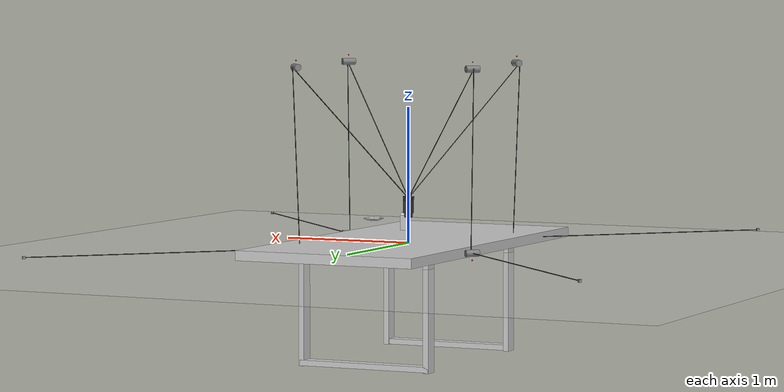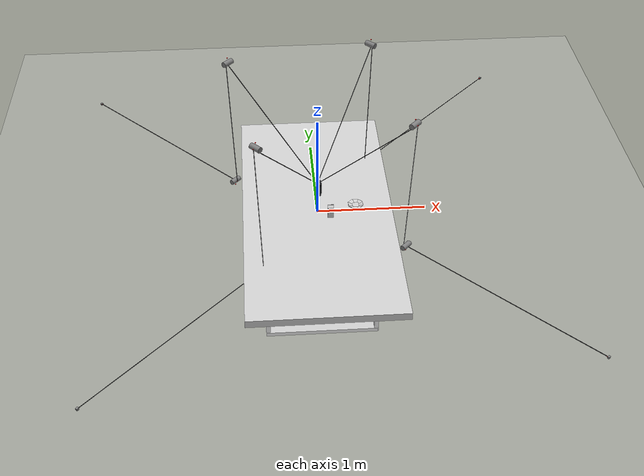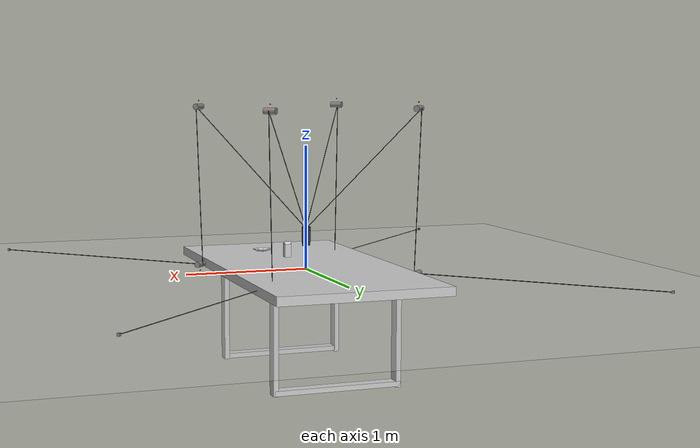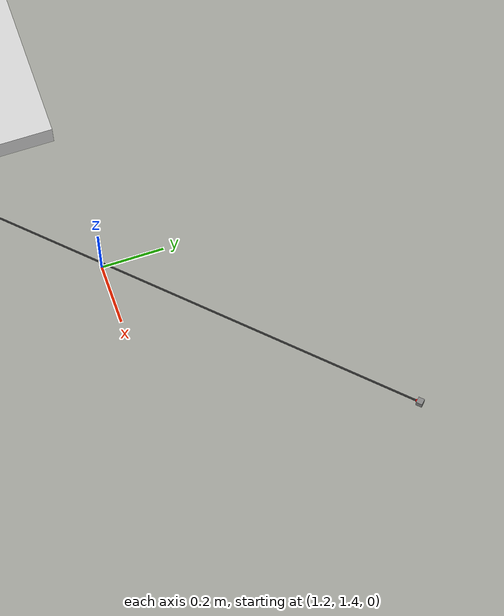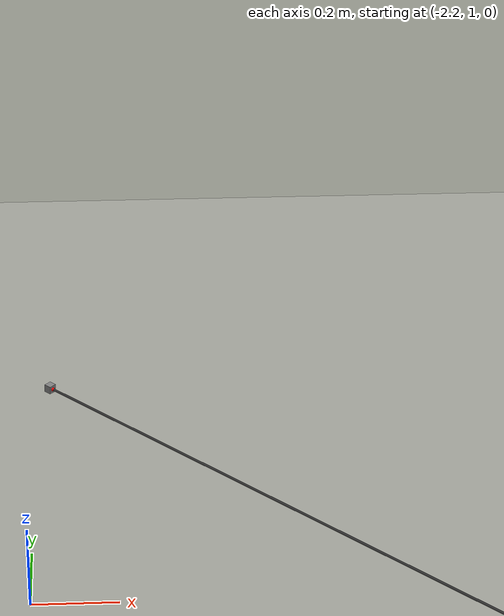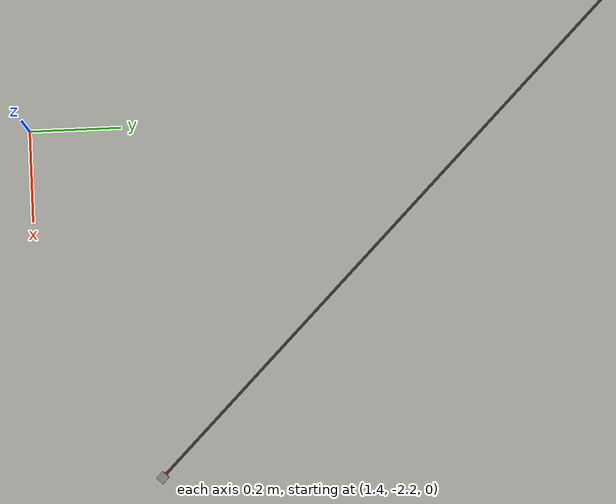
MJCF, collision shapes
<mujoco>
    <compiler autolimits="true"/>

    <!-- Set mesh/texture dirs for the SCENE only -->
    <compiler meshdir="/Users/damirnurtdinov/Desktop/My Courses/Диплом/CDPR-Dataset/cdpr_dataset/wrappers" texturedir="/Users/damirnurtdinov/Desktop/My Courses/Диплом/CDPR-Dataset/cdpr_dataset/wrappers"/>
    <include file="/Users/damirnurtdinov/Desktop/My Courses/Диплом/CDPR-Dataset/cdpr_dataset/wrappers/desk_zshift.xml"/>

    <!-- Reset to neutral (our CDPR uses primitives / absolute includes) -->
    <compiler meshdir="" texturedir=""/>

    <!-- CDPR rig -->
    <include file="/Users/damirnurtdinov/Desktop/My Courses/Диплом/CDPR-Dataset/cdpr_dataset/wrappers/cdpr_ee_override.xml"/>

    <!-- Placed LIBERO objects (assets already absolute) -->
    <include file="/Users/damirnurtdinov/Desktop/My Courses/Диплом/CDPR-Dataset/cdpr_dataset/wrappers/placed_0_milk.xml"/>
<include file="/Users/damirnurtdinov/Desktop/My Courses/Диплом/CDPR-Dataset/cdpr_dataset/wrappers/placed_1_plate.xml"/>
    </mujoco>

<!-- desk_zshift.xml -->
<mujoco model="desk">
  <asset>
    <texture file="/root/repo/LIBERO/libero/libero/assets/scenes/desk/desk_texture.png" name="tex-desk" type="2d" />
    <material name="desk" reflectance="0.5" texrepeat="1 1" texture="tex-desk" texuniform="false" />
    <mesh file="/root/repo/LIBERO/libero/libero/assets/scenes/desk/visual/desk_vis.msh" name="desk_vis" scale="1.0 1.0 1.0" />
  </asset>
  <worldbody>
    <body pos="0.0 0.0 -0.85">
      <body name="object">
        <geom solimp="0.998 0.998 0.001" solref="0.001 1" density="100" friction="0.95 0.3 0.1" type="mesh" mesh="desk_vis" conaffinity="0" contype="0" group="1" material="desk" />
        <geom solimp="0.998 0.998 0.001" solref="0.001 1" density="100" friction="0.95 0.3 0.1" type="box" pos="-0.00000 0.00000 0.84929" quat="0.50000 -0.50000 0.50000 0.50000" size="0.03584 0.68946 1.39273" group="0" rgba="0.8 0.8 0.8 0.3" />
        <geom solimp="0.998 0.998 0.001" solref="0.001 1" density="100" friction="0.95 0.3 0.1" type="box" pos="-0.50048 -0.69064 0.39431" quat="0.00000 0.00000 1.00000 0.00000" size="0.02002 0.05031 0.39407" group="0" rgba="0.8 0.8 0.8 0.3" />
        <geom solimp="0.998 0.998 0.001" solref="0.001 1" density="100" friction="0.95 0.3 0.1" type="box" pos="0.49617 -0.69064 0.39431" quat="1.00000 -0.00000 -0.00000 -0.00000" size="0.02002 0.05031 0.39407" group="0" rgba="0.8 0.8 0.8 0.3" />
        <geom solimp="0.998 0.998 0.001" solref="0.001 1" density="100" friction="0.95 0.3 0.1" type="box" pos="0.49617 0.70968 0.39431" quat="0.00000 0.00000 1.00000 0.00000" size="0.02002 0.05032 0.39407" group="0" rgba="0.8 0.8 0.8 0.3" />
        <geom solimp="0.998 0.998 0.001" solref="0.001 1" density="100" friction="0.95 0.3 0.1" type="box" pos="-0.50048 0.71473 0.39431" quat="1.00000 -0.00000 -0.00000 -0.00000" size="0.02002 0.05031 0.39407" group="0" rgba="0.8 0.8 0.8 0.3" />
        <geom solimp="0.998 0.998 0.001" solref="0.001 1" density="100" friction="0.95 0.3 0.1" type="box" pos="-0.00488 0.71473 0.02528" quat="0.70811 0.00000 -0.70610 -0.00000" size="0.02002 0.05031 0.51262" group="0" rgba="0.8 0.8 0.8 0.3" />
        <geom solimp="0.998 0.998 0.001" solref="0.001 1" density="100" friction="0.95 0.3 0.1" type="box" pos="-0.00488 -0.69765 0.02528" quat="0.70811 0.00000 -0.70610 -0.00000" size="0.02002 0.05032 0.51262" group="0" rgba="0.8 0.8 0.8 0.3" />
      </body>
      <site rgba="0 0 0 0" size="0.005" pos="0 0 -0.06" name="bottom_site" />
      <site rgba="0 0 0 0" size="0.005" pos="0 0 0.04" name="top_site" />
      <site rgba="0 0 0 0" size="0.005" pos="0.025 0.025 0" name="horizontal_radius_site" />
    </body>
  </worldbody>
</mujoco>

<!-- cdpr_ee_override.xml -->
<mujoco>
  <compiler autolimits="true" />
  <default>
    <site type="sphere" rgba="1 0 0 1" size="0.005" />
    <tendon rgba="0.2 0.2 0.2 1" />
  </default>
  <visual>
    <headlight diffuse=".7 .7 .7" />
  </visual>
  <worldbody>
    <light name="side_light" pos="1.0 -1.0 2.0" dir="-1 1 -1" diffuse="0.6 0.6 0.6" specular="0.1 0.1 0.1" directional="true" castshadow="false" />
    <body name="rotor_1_up" pos="-0.535 -0.755 1.309" euler="90 45 0">
      <geom name="rotor_1_up" type="cylinder" size=".025 .05" />
      <site name="top_main_site_1" pos="-0.025 0.00001 0" />
      <site name="top_sidesite_1" pos="0 0.05 0" />
      <body name="rotor_1_down" pos="0 -1.309 0" euler="0 0 0">
        <geom name="rotor_1_down" type="cylinder" size=".025 .05" />
        <site name="bot_main_site_1" pos="0.025 -0.00001 0" />
        <site name="bot_sidesite_1" pos="0 -0.05 0" />
        <body name="slider_1" pos="-2 0 0">
          <inertial pos="0 0 0" mass="2" diaginertia="0.0001 0.0001 0.0001" />
          <joint name="slider_1" type="slide" axis="-1 0 0" damping="5" />
          <geom type="box" size="0.01 0.01 0.01" />
          <site name="slider_1" pos="0.01 0 0" />
        </body>
      </body>
    </body>
    <body name="rotor_2_up" pos="0.755 -0.525 1.309" euler="90 135 0">
      <geom name="rotor_2_up" type="cylinder" size=".025 .05" />
      <site name="top_main_site_2" pos="-0.025 0.00001 0" />
      <site name="top_sidesite_2" pos="0 0.05 0" />
      <body name="rotor_2_down" pos="0 -1.309 0" euler="0 0 0">
        <geom name="rotor_2_down" type="cylinder" size=".025 .05" />
        <site name="bot_main_site_2" pos="0.025 -0.00001 0" />
        <site name="bot_sidesite_2" pos="0 -0.05 0" />
        <body name="slider_2" pos="-2 0 0">
          <inertial pos="0 0 0" mass="2" diaginertia="0.0001 0.0001 0.0001" />
          <joint name="slider_2" type="slide" axis="-1 0 0" damping="5" />
          <geom type="box" size="0.01 0.01 0.01" />
          <site name="slider_2" pos="0.01 0 0" />
        </body>
      </body>
    </body>
    <body name="rotor_3_up" pos="0.535 0.755 1.309" euler="90 -135 0">
      <geom name="rotor_3_up" type="cylinder" size=".025 .05" />
      <site name="top_main_site_3" pos="-0.025 0.00001 0" />
      <site name="top_sidesite_3" pos="0 0.05 0" />
      <body name="rotor_3_down" pos="0 -1.309 0" euler="0 0 0">
        <geom name="rotor_3_down" type="cylinder" size=".025 .05" />
        <site name="bot_main_site_3" pos="0.025 -0.00001 0" />
        <site name="bot_sidesite_3" pos="0 -0.05 0" />
        <body name="slider_3" pos="-2 0 0">
          <inertial pos="0 0 0" mass="2" diaginertia="0.0001 0.0001 0.0001" />
          <joint name="slider_3" type="slide" axis="-1 0 0" damping="5" />
          <geom type="box" size="0.01 0.01 0.01" />
          <site name="slider_3" pos="0.01 0 0" />
        </body>
      </body>
    </body>
    <body name="rotor_4_up" pos="-0.755 0.525 1.309" euler="90  -45 0">
      <geom name="rotor_4_up" type="cylinder" size=".025 .05" />
      <site name="top_main_site_4" pos="-0.025 0.00001 0" />
      <site name="top_sidesite_4" pos="0 0.05 0" />
      <body name="rotor_4_down" pos="0 -1.309 0" euler="0 0 0">
        <geom name="rotor_4_down" type="cylinder" size=".025 .05" />
        <site name="bot_main_site_4" pos="0.025 -0.00001 0" />
        <site name="bot_sidesite_4" pos="0 -0.05 0" />
        <body name="slider_4" pos="-2 0 0">
          <inertial pos="0 0 0" mass="2" diaginertia="0.0001 0.0001 0.0001" />
          <joint name="slider_4" type="slide" axis="-1 0 0" damping="5" />
          <geom type="box" size="0.01 0.01 0.01" />
          <site name="slider_4" pos="0.01 0 0" />
        </body>
      </body>
    </body>
    <geom name="floor" type="plane" size="5 5 0.1" pos="0 0 -0.1" rgba="0.8 0.8 0.8 1" />
    <body name="ee_base" pos="0.0 0.0 0.25">
      <joint name="ee_free" type="free" damping="3" armature="0.002" />
      <inertial pos="0 0 0" mass="1.2" diaginertia="0.02 0.02 0.02" />
      <site name="topcenter" pos="0 0 0.08" size="0.006" rgba="0 0 1 1" />
      <body name="yaw_frame" pos="0 0 0">
        <inertial pos="0 0 0" mass="0.15" diaginertia="0.0006 0.0006 0.0006" />
        <joint name="ee_yaw" type="hinge" axis="0 0 1" limited="true" range="-3.1416 3.1416" damping="0.4" />
        <body name="ee_stab" pos="0 0 0">
          <inertial pos="0 0 0" mass="0.6" diaginertia="0.005 0.005 0.005" />
          <joint name="ee_ball" type="ball" damping="6" stiffness="80" armature="0.02" limited="false" />
          <body name="camera_body" pos="0 0.05 0.07">
            <camera name="ee_camera" mode="fixed" fovy="60" />
          </body>
          <body name="ee_platform" pos="0 0 0.08">
            <inertial pos="0 0 0" mass="0.35" diaginertia="0.003 0.003 0.003" />
            <geom name="palm" type="box" size="0.03 0.03 0.015" rgba="0.15 0.15 0.15 1" contype="1" conaffinity="1" />
            <body name="finger_left_car" pos="0.025 0 0">
              <inertial pos="0 0 0" mass="0.08" diaginertia="0.0002 0.0002 0.00015" />
              <joint name="finger_l" type="slide" axis="1 0 0" limited="true" range="0 0.05" damping="3.0" />
              <geom name="finger_l_link" type="box" size="0.012 0.01 0.055" pos="0 0 -0.055" rgba="0.2 0.2 0.2 1" contype="1" conaffinity="1" friction="1.5 0.02 0.01" />
              <geom name="finger_l_tip" type="capsule" fromto="0 0 -0.11  0 0 -0.135" size="0.008" rgba="0.2 0.2 0.2 1" contype="1" conaffinity="1" friction="1.5 0.02 0.01" />
            </body>
            <body name="finger_right_car" pos="-0.025 0 0">
              <inertial pos="0 0 0" mass="0.08" diaginertia="0.0002 0.0002 0.00015" />
              <joint name="finger_r" type="slide" axis="-1 0 0" limited="true" range="0 0.05" damping="3.0" />
              <geom name="finger_r_link" type="box" size="0.012 0.01 0.055" pos="0 0 -0.055" rgba="0.2 0.2 0.2 1" contype="1" conaffinity="1" friction="1.5 0.02 0.01" />
              <geom name="finger_r_tip" type="capsule" fromto="0 0 -0.11  0 0 -0.135" size="0.008" rgba="0.2 0.2 0.2 1" contype="1" conaffinity="1" friction="1.5 0.02 0.01" />
            </body>
          </body>
        </body>
      </body>
    </body>
  </worldbody>
  <equality>
    <joint joint1="finger_l" joint2="finger_r" polycoef="0 1 0 0 0" />
  </equality>
  <tendon>
    <spatial name="rope_1" limited="true" range="0 4.235" stiffness="0" damping="0">
      <site site="topcenter" />
      <geom geom="rotor_1_up" sidesite="top_sidesite_1" />
      <site site="top_main_site_1" />
      <site site="bot_main_site_1" />
      <geom geom="rotor_1_down" sidesite="bot_sidesite_1" />
      <site site="slider_1" />
    </spatial>
    <spatial name="rope_2" limited="true" range="0 4.235" stiffness="0" damping="0">
      <site site="topcenter" />
      <geom geom="rotor_2_up" sidesite="top_sidesite_2" />
      <site site="top_main_site_2" />
      <site site="bot_main_site_2" />
      <geom geom="rotor_2_down" sidesite="bot_sidesite_2" />
      <site site="slider_2" />
    </spatial>
    <spatial name="rope_3" limited="true" range="0 4.235" stiffness="0" damping="0">
      <site site="topcenter" />
      <geom geom="rotor_3_up" sidesite="top_sidesite_3" />
      <site site="top_main_site_3" />
      <site site="bot_main_site_3" />
      <geom geom="rotor_3_down" sidesite="bot_sidesite_3" />
      <site site="slider_3" />
    </spatial>
    <spatial name="rope_4" limited="true" range="0 4.235" stiffness="0" damping="0">
      <site site="topcenter" />
      <geom geom="rotor_4_up" sidesite="top_sidesite_4" />
      <site site="top_main_site_4" />
      <site site="bot_main_site_4" />
      <geom geom="rotor_4_down" sidesite="bot_sidesite_4" />
      <site site="slider_4" />
    </spatial>
  </tendon>
  <actuator>
    <position name="slider_1_pos" joint="slider_1" ctrlrange="-4.5 4.5" kp="200" kv="80" />
    <position name="slider_2_pos" joint="slider_2" ctrlrange="-4.5 4.5" kp="200" kv="80" />
    <position name="slider_3_pos" joint="slider_3" ctrlrange="-4.5 4.5" kp="200" kv="80" />
    <position name="slider_4_pos" joint="slider_4" ctrlrange="-4.5 4.5" kp="200" kv="80" />
    <position name="act_ee_yaw" joint="ee_yaw" kp="30" ctrlrange="-3.1416 3.1416" />
    <position name="act_gripper" joint="finger_l" kp="300" ctrlrange="0 0.06" />
  </actuator>
  <sensor>
    <framepos objtype="camera" objname="ee_camera" />
    <framequat objtype="camera" objname="ee_camera" />
  </sensor>
</mujoco>

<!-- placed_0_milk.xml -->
<mujoco>
  <compiler autolimits="true" />
  <default>
    <geom density="1200" />
  </default>
  <asset>
    <texture file="/root/repo/LIBERO/libero/libero/assets/stable_hope_objects/milk/texture_map.png" name="p0_tex-textured" type="2d" />
    <material name="p0_textured" reflectance="0.5" texrepeat="1 1" texture="p0_tex-textured" texuniform="false" />
    <mesh file="/root/repo/LIBERO/libero/libero/assets/stable_hope_objects/milk/visual/textured_vis.msh" name="p0_textured_vis" scale="0.0075 0.0075 0.0075" />
  </asset>
  <worldbody>
    <body name="p0_milk" pos="0.108 -0.163 0.15" quat="0.7071067811865476 0.7071067811865475 0.0 0.0">
      <body name="p0_object">
        <geom solimp="0.998 0.998 0.001" solref="0.001 1" density="100" friction="0.95 0.3 0.1" type="mesh" mesh="p0_textured_vis" conaffinity="0" contype="0" group="1" material="p0_textured" />
        <geom solimp="0.998 0.998 0.001" solref="0.001 1" density="100" friction="0.95 0.3 0.1" type="box" pos="0.00037 -0.01500 0.00000" quat="0.70711 0.70711 0.00000 -0.00000" size="0.02625 0.02625 0.05475" group="0" rgba="0.8 0.8 0.8 0.3" />
        <geom solimp="0.998 0.998 0.001" solref="0.001 1" density="100" friction="0.95 0.3 0.1" type="box" pos="0.00005 0.04784 0.01352" quat="0.28687 0.64630 -0.28687 -0.64630" size="0.00218 0.01381 0.02631" group="0" rgba="0.8 0.8 0.8 0.3" />
        <geom solimp="0.998 0.998 0.001" solref="0.001 1" density="100" friction="0.95 0.3 0.1" type="box" pos="0.00005 0.04784 -0.01344" quat="0.64203 0.29630 0.64203 0.29630" size="0.00218 0.01381 0.02631" group="0" rgba="0.8 0.8 0.8 0.3" />
        <geom solimp="0.998 0.998 0.001" solref="0.001 1" density="100" friction="0.95 0.3 0.1" type="box" pos="0.00005 0.05849 0.00005" quat="0.50000 0.50000 -0.50000 -0.50000" size="0.00295 0.00348 0.02650" group="0" rgba="0.8 0.8 0.8 0.3" />
      </body>
      <site rgba="0 0 0 0" size="0.005" pos="0 0 -0.06" name="p0_bottom_site" />
      <site rgba="0 0 0 0" size="0.005" pos="0 0 0.04" name="p0_top_site" />
      <site rgba="0 0 0 0" size="0.005" pos="0.03 0.03 0" name="p0_horizontal_radius_site" />
      <freejoint />
    </body>
  </worldbody>
</mujoco>

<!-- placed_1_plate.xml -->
<mujoco>
  <compiler autolimits="true" />
  <default>
    <geom density="1200" />
  </default>
  <asset>
    <texture file="/root/repo/LIBERO/libero/libero/assets/stable_scanned_objects/plate/texture.png" name="p1_tex-model" type="2d" />
    <material name="p1_model" reflectance="0.5" texrepeat="1 1" texture="p1_tex-model" texuniform="false" />
    <mesh file="/root/repo/LIBERO/libero/libero/assets/stable_scanned_objects/plate/visual/model_vis.msh" name="p1_model_vis" scale="0.5 0.5 0.5" />
  </asset>
  <worldbody>
    <body name="p1_plate" pos="0.34 -0.109 0.15" quat="1.0 0.0 0.0 0.0">
      <body name="p1_object">
        <geom solimp="0.998 0.998 0.001" solref="0.001 1" density="100" friction="0.95 0.3 0.1" type="mesh" mesh="p1_model_vis" conaffinity="0" contype="0" group="1" material="p1_model" />
        <geom solimp="0.998 0.998 0.001" solref="0.001 1" density="100" friction="0.95 0.3 0.1" type="box" pos="0.00000 -0.00000 0.00313" quat="0.49356 0.49356 -0.50636 0.50636" size="0.00222 0.02851 0.03057" group="0" rgba="0.8 0.8 0.8 0.3" />
        <geom solimp="0.998 0.998 0.001" solref="0.001 1" density="100" friction="0.95 0.3 0.1" type="box" pos="-0.00000 0.04828 0.00696" quat="0.70574 0.12139 0.68790 0.11832" size="0.00254 0.01913 0.02851" group="0" rgba="0.8 0.8 0.8 0.3" />
        <geom solimp="0.998 0.998 0.001" solref="0.001 1" density="100" friction="0.95 0.3 0.1" type="box" pos="-0.00000 0.04828 0.00696" quat="0.70574 0.12139 0.68790 0.11832" size="0.00254 0.01913 0.02851" group="0" rgba="0.8 0.8 0.8 0.3" />
        <geom solimp="0.998 0.998 0.001" solref="0.001 1" density="100" friction="0.95 0.3 0.1" type="box" pos="0.03237 0.03583 0.00696" quat="0.70114 0.36036 0.59839 -0.14306" size="0.00254 0.01913 0.02851" group="0" rgba="0.8 0.8 0.8 0.3" />
        <geom solimp="0.998 0.998 0.001" solref="0.001 1" density="100" friction="0.95 0.3 0.1" type="box" pos="0.04818 0.00314 0.00696" quat="0.59590 0.55892 0.41899 -0.39618" size="0.00254 0.01913 0.02851" group="0" rgba="0.8 0.8 0.8 0.3" />
        <geom solimp="0.998 0.998 0.001" solref="0.001 1" density="100" friction="0.95 0.3 0.1" type="box" pos="0.03658 -0.03152 0.00696" quat="0.67591 -0.40164 0.59224 0.17629" size="0.00254 0.01913 0.02851" group="0" rgba="0.8 0.8 0.8 0.3" />
        <geom solimp="0.998 0.998 0.001" solref="0.001 1" density="100" friction="0.95 0.3 0.1" type="box" pos="0.00230 -0.04823 0.00696" quat="0.13507 0.69059 -0.10500 -0.70272" size="0.00254 0.01913 0.02851" group="0" rgba="0.8 0.8 0.8 0.3" />
        <geom solimp="0.998 0.998 0.001" solref="0.001 1" density="100" friction="0.95 0.3 0.1" type="box" pos="-0.03334 -0.03492 0.00696" quat="0.59339 0.15267 0.69911 -0.36855" size="0.00254 0.01913 0.02851" group="0" rgba="0.8 0.8 0.8 0.3" />
        <geom solimp="0.998 0.998 0.001" solref="0.001 1" density="100" friction="0.95 0.3 0.1" type="box" pos="-0.04827 -0.00130 0.00696" quat="0.40827 0.40746 0.58825 -0.56679" size="0.00254 0.01913 0.02851" group="0" rgba="0.8 0.8 0.8 0.3" />
        <geom solimp="0.998 0.998 0.001" solref="0.001 1" density="100" friction="0.95 0.3 0.1" type="box" pos="-0.03442 0.03386 0.00696" quat="0.60516 -0.15392 0.68136 0.38190" size="0.00254 0.01913 0.02851" group="0" rgba="0.8 0.8 0.8 0.3" />
      </body>
      <site rgba="0 0 0 0" size="0.005" pos="0 0 -0.06" name="p1_bottom_site" />
      <site rgba="0 0 0 0" size="0.005" pos="0 0 0.04" name="p1_top_site" />
      <site rgba="0 0 0 0" size="0.005" pos="0.025 0.025 0" name="p1_horizontal_radius_site" />
      <freejoint />
    </body>
  </worldbody>
</mujoco>
